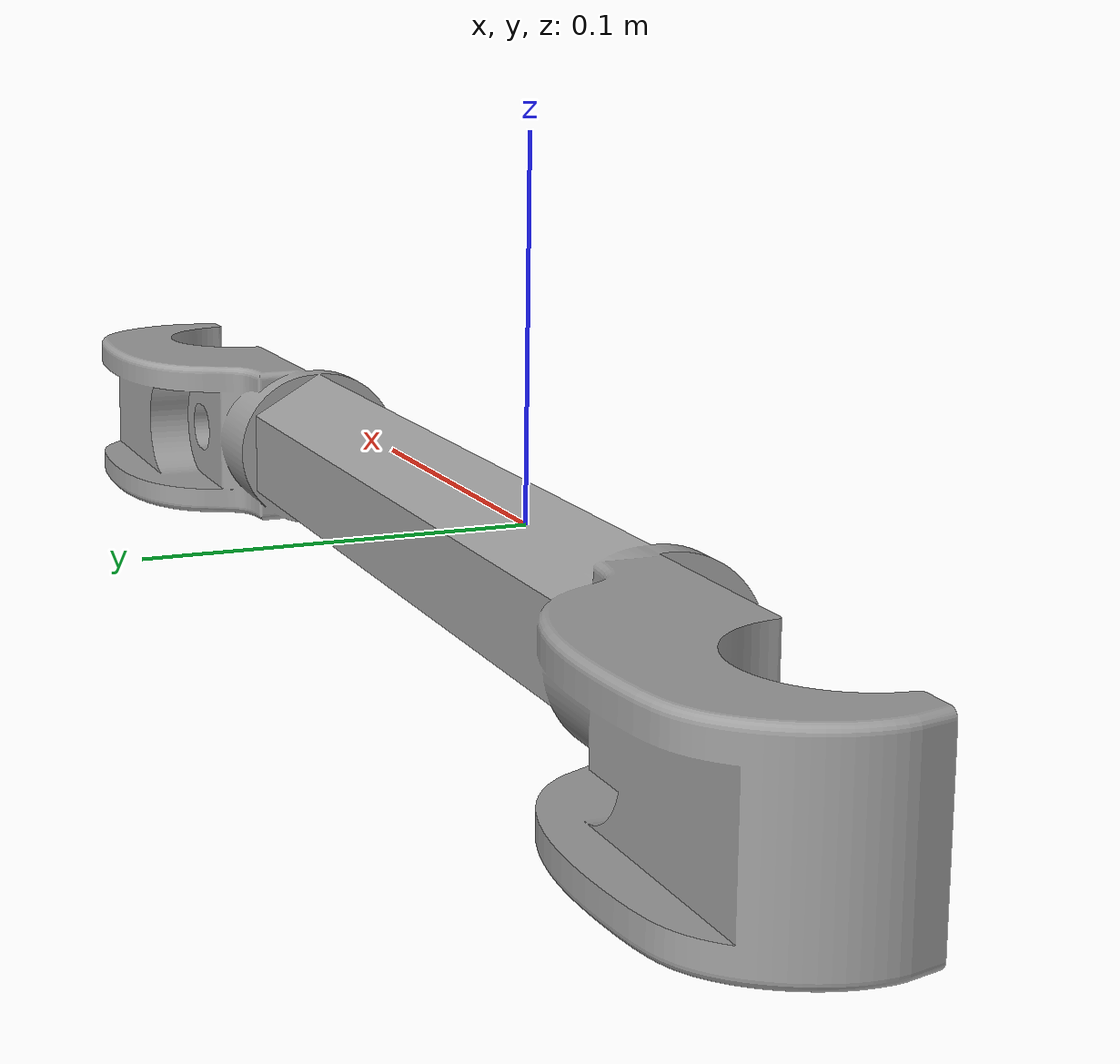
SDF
<?xml version='1.0'?>
<sdf version='1.6'>
  <model name='Separador_stl'>
    <static>true</static>
    <link name='superior'>
      <inertial>
        <mass>1</mass>
        <inertia>
          <ixx>0.166667</ixx>
          <ixy>0</ixy>
          <ixz>0</ixz>
          <iyy>0.166667</iyy>
          <iyz>0</iyz>
          <izz>0.166667</izz>
        </inertia>
        <pose>0.25 0.015 0.015 0 0 0</pose>
      </inertial>
      <visual name='visual'>
        <geometry>
          <mesh>
            <uri>model://separador_stl/meshes/separador.dae</uri>
            <scale>1 1 1</scale>
          </mesh>
        </geometry>
        <material>
  	</material>
      </visual>
    </link>

  </model>
</sdf>
